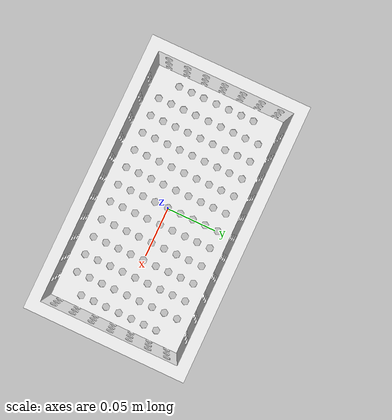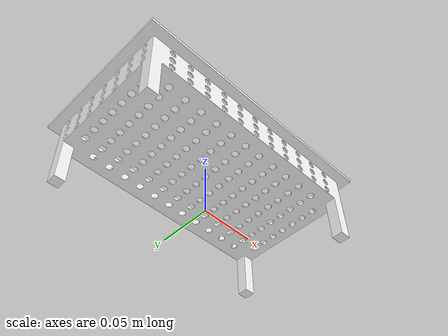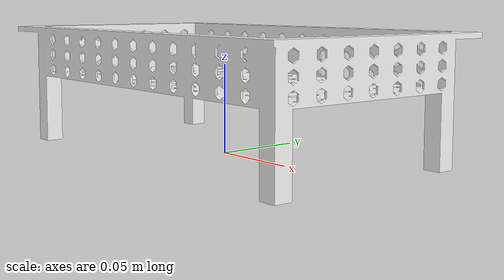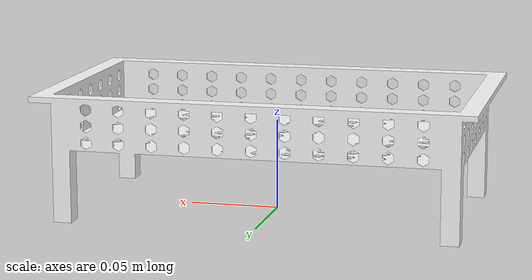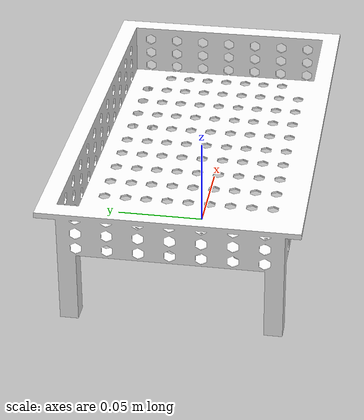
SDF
<?xml version="1.0" ?>
<sdf version="1.9">
  <model name="target_basket">
    <static>true</static>
    <link name="basket_link">
      <pose>0 0 0 0 0 0</pose>

      <collision name="basket_collision">
        <pose>0 0 0.035 0 0 0</pose>
        <geometry>
          <box>
            <size>0.238 0.138 0.070</size>
          </box>
        </geometry>
      </collision>

      <visual name="basket_visual">
        <pose>-0.110 -0.060 0 0 0 0</pose>
        <geometry>
          <mesh>
            <uri>model://target_basket/meshes/basket.stl</uri>
            <scale>0.001 0.001 0.001</scale>
          </mesh>
        </geometry>
        <material>
          <ambient>1 1 1 1</ambient>
          <diffuse>1 1 1 1</diffuse>
          <specular>0.3 0.3 0.3 1</specular>
        </material>
      </visual>
    </link>
  </model>
</sdf>
